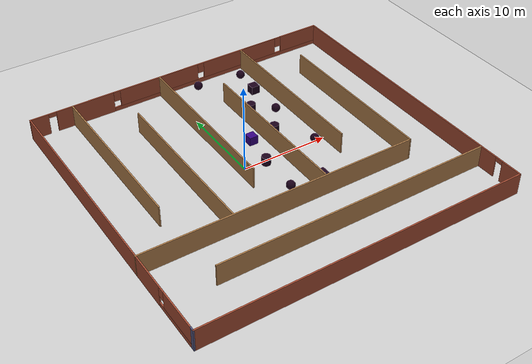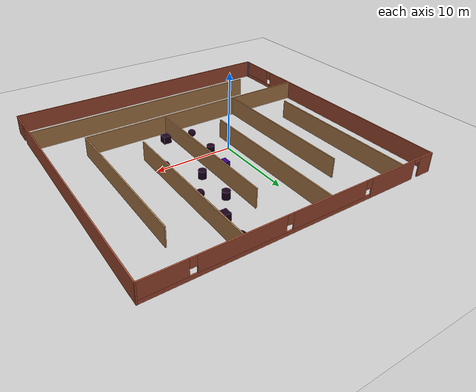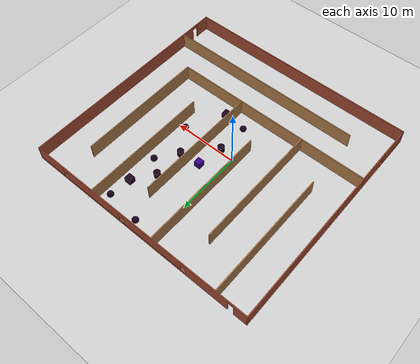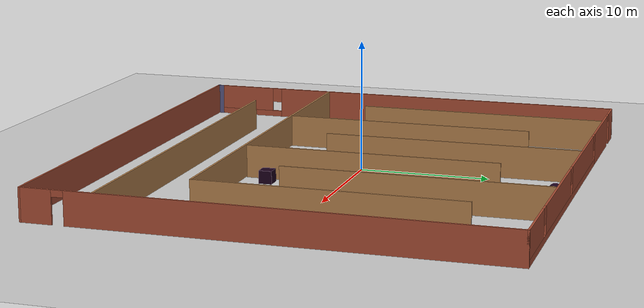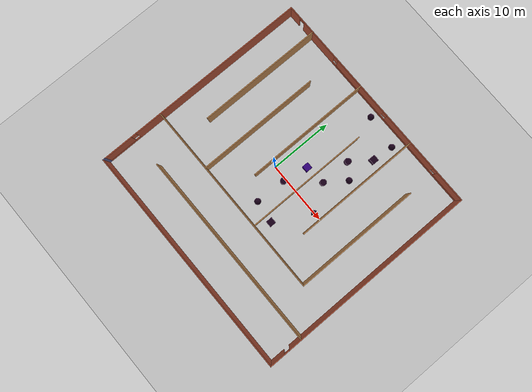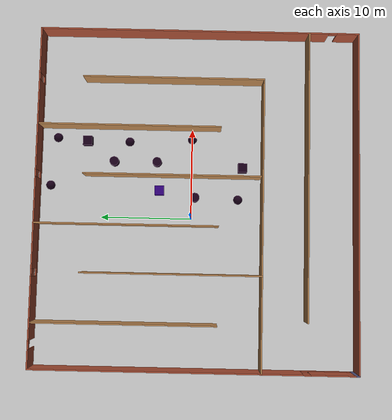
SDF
<sdf version="1.6">
 <world name="default">
  <model name="ground_plane">
   <static>1</static>
   <link name="link">
    <collision name="collision">
     <geometry><plane><normal>0 0 1</normal><size>100 100</size></plane></geometry>
     <surface><friction><ode><mu>100</mu><mu2>50</mu2></ode></friction></surface>
    </collision>
    <visual name="visual">
     <cast_shadows>0</cast_shadows>
     <geometry><plane><normal>0 0 1</normal><size>100 100</size></plane></geometry>
     <material>
      <script><uri>file://media/materials/scripts/gazebo.material</uri><name>Gazebo/Grey</name></script>
     </material>
    </visual>
   </link>
  </model>
  <model name="Building1">
   <pose>2.18279 -0.6308 0 0 -0 0</pose>
   <link name="Wall_135">
    <pose>0.005428 17.55 0 0 -0 0</pose>
    <visual name="Wall_135_Visual_0">
     <pose>-17.5623 0 1.25 0 -0 0</pose>
     <geometry><box><size>2.12549 0.15 2.5</size></box></geometry>
     <material>
      <script><uri>file://media/materials/scripts/gazebo.material</uri><name>Gazebo/Bricks</name></script>
      <ambient>0.333333 0.333333 0.498039 1</ambient>
     </material>
     <meta><layer>0</layer></meta>
    </visual>
    <collision name="Wall_135_Collision_0">
     <geometry><box><size>2.12549 0.15 2.5</size></box></geometry>
     <pose>-17.5623 0 1.25 0 -0 0</pose>
    </collision>
    <visual name="Wall_135_Visual_1">
     <pose>-12.2043 0 1.25 0 -0 0</pose>
     <geometry><box><size>6.79049 0.15 2.5</size></box></geometry>
     <material>
      <script><uri>file://media/materials/scripts/gazebo.material</uri><name>Gazebo/Bricks</name></script>
      <ambient>0.333333 0.333333 0.498039 1</ambient>
     </material>
     <meta><layer>0</layer></meta>
    </visual>
    <collision name="Wall_135_Collision_1">
     <geometry><box><size>6.79049 0.15 2.5</size></box></geometry>
     <pose>-12.2043 0 1.25 0 -0 0</pose>
    </collision>
    <visual name="Wall_135_Visual_2">
     <pose>4.90799 0 0.25 0 -0 0</pose>
     <geometry><box><size>27.434 0.15 0.5</size></box></geometry>
     <material>
      <script><uri>file://media/materials/scripts/gazebo.material</uri><name>Gazebo/Bricks</name></script>
      <ambient>0.333333 0.333333 0.498039 1</ambient>
     </material>
     <meta><layer>0</layer></meta>
    </visual>
    <collision name="Wall_135_Collision_2">
     <geometry><box><size>27.434 0.15 0.5</size></box></geometry>
     <pose>4.90799 0 0.25 0 -0 0</pose>
    </collision>
    <visual name="Wall_135_Visual_3">
     <pose>-3.02838 0 1.5 0 -0 0</pose>
     <geometry><box><size>9.96126 0.15 2</size></box></geometry>
     <material>
      <script><uri>file://media/materials/scripts/gazebo.material</uri><name>Gazebo/Bricks</name></script>
      <ambient>0.333333 0.333333 0.498039 1</ambient>
     </material>
     <meta><layer>0</layer></meta>
    </visual>
    <collision name="Wall_135_Collision_3">
     <geometry><box><size>9.96126 0.15 2</size></box></geometry>
     <pose>-3.02838 0 1.5 0 -0 0</pose>
    </collision>
    <visual name="Wall_135_Visual_4">
     <pose>7.73288 0 1.5 0 -0 0</pose>
     <geometry><box><size>9.96126 0.15 2</size></box></geometry>
     <material>
      <script><uri>file://media/materials/scripts/gazebo.material</uri><name>Gazebo/Bricks</name></script>
      <ambient>0.333333 0.333333 0.498039 1</ambient>
     </material>
     <meta><layer>0</layer></meta>
    </visual>
    <collision name="Wall_135_Collision_4">
     <geometry><box><size>9.96126 0.15 2</size></box></geometry>
     <pose>7.73288 0 1.5 0 -0 0</pose>
    </collision>
    <visual name="Wall_135_Visual_5">
     <pose>16.0693 0 1.5 0 -0 0</pose>
     <geometry><box><size>5.11148 0.15 2</size></box></geometry>
     <material>
      <script><uri>file://media/materials/scripts/gazebo.material</uri><name>Gazebo/Bricks</name></script>
      <ambient>0.333333 0.333333 0.498039 1</ambient>
     </material>
     <meta><layer>0</layer></meta>
    </visual>
    <collision name="Wall_135_Collision_5">
     <geometry><box><size>5.11148 0.15 2</size></box></geometry>
     <pose>16.0693 0 1.5 0 -0 0</pose>
    </collision>
    <visual name="Wall_135_Visual_6">
     <pose>-8.40901 0 1.9 0 -0 0</pose>
     <geometry><box><size>0.8 0.15 1.2</size></box></geometry>
     <material>
      <script><uri>file://media/materials/scripts/gazebo.material</uri><name>Gazebo/Bricks</name></script>
      <ambient>0.333333 0.333333 0.498039 1</ambient>
     </material>
     <meta><layer>0</layer></meta>
    </visual>
    <collision name="Wall_135_Collision_6">
     <geometry><box><size>0.8 0.15 1.2</size></box></geometry>
     <pose>-8.40901 0 1.9 0 -0 0</pose>
    </collision>
    <visual name="Wall_135_Visual_7">
     <pose>2.35225 0 1.9 0 -0 0</pose>
     <geometry><box><size>0.8 0.15 1.2</size></box></geometry>
     <material>
      <script><uri>file://media/materials/scripts/gazebo.material</uri><name>Gazebo/Bricks</name></script>
      <ambient>0.333333 0.333333 0.498039 1</ambient>
     </material>
     <meta><layer>0</layer></meta>
    </visual>
    <collision name="Wall_135_Collision_7">
     <geometry><box><size>0.8 0.15 1.2</size></box></geometry>
     <pose>2.35225 0 1.9 0 -0 0</pose>
    </collision>
    <visual name="Wall_135_Visual_8">
     <pose>13.1135 0 1.9 0 -0 0</pose>
     <geometry><box><size>0.8 0.15 1.2</size></box></geometry>
     <material>
      <script><uri>file://media/materials/scripts/gazebo.material</uri><name>Gazebo/Bricks</name></script>
      <ambient>0.333333 0.333333 0.498039 1</ambient>
     </material>
     <meta><layer>0</layer></meta>
    </visual>
    <collision name="Wall_135_Collision_8">
     <geometry><box><size>0.8 0.15 1.2</size></box></geometry>
     <pose>13.1135 0 1.9 0 -0 0</pose>
    </collision>
    <visual name="Wall_135_Visual_9">
     <pose>-16.0495 0 2.25 0 -0 0</pose>
     <geometry><box><size>0.9 0.15 0.5</size></box></geometry>
     <material>
      <script><uri>file://media/materials/scripts/gazebo.material</uri><name>Gazebo/Bricks</name></script>
      <ambient>0.333333 0.333333 0.498039 1</ambient>
     </material>
     <meta><layer>0</layer></meta>
    </visual>
    <collision name="Wall_135_Collision_9">
     <geometry><box><size>0.9 0.15 0.5</size></box></geometry>
     <pose>-16.0495 0 2.25 0 -0 0</pose>
    </collision>
   </link>
   <link name="Wall_138">
    <collision name="Wall_138_Collision">
     <geometry><box><size>20 0.15 2.5</size></box></geometry>
     <pose>0 0 1.25 0 -0 0</pose>
    </collision>
    <visual name="Wall_138_Visual">
     <pose>0 0 1.25 0 -0 0</pose>
     <geometry><box><size>20 0.15 2.5</size></box></geometry>
     <material>
      <script><uri>file://media/materials/scripts/gazebo.material</uri><name>Gazebo/Wood</name></script>
      <ambient>0.333333 0.333333 0.498039 1</ambient>
     </material>
     <meta><layer>0</layer></meta>
    </visual>
    <pose>-13.6766 7.55431 0 0 -0 -1.5708</pose>
   </link>
   <link name="Wall_140">
    <collision name="Wall_140_Collision">
     <geometry><box><size>19.75 0.15 2.5</size></box></geometry>
     <pose>0 0 1.25 0 -0 0</pose>
    </collision>
    <visual name="Wall_140_Visual">
     <pose>0 0 1.25 0 -0 0</pose>
     <geometry><box><size>19.75 0.15 2.5</size></box></geometry>
     <material>
      <script><uri>file://media/materials/scripts/gazebo.material</uri><name>Gazebo/Wood</name></script>
      <ambient>0.333333 0.333333 0.498039 1</ambient>
     </material>
     <meta><layer>0</layer></meta>
    </visual>
    <pose>-8.29597 2.63601 0 0 -0 1.5708</pose>
   </link>
   <link name="Wall_142">
    <collision name="Wall_142_Collision">
     <geometry><box><size>20 0.15 2.5</size></box></geometry>
     <pose>0 0 1.25 0 -0 0</pose>
    </collision>
    <visual name="Wall_142_Visual">
     <pose>0 0 1.25 0 -0 0</pose>
     <geometry><box><size>20 0.15 2.5</size></box></geometry>
     <material>
      <script><uri>file://media/materials/scripts/gazebo.material</uri><name>Gazebo/Wood</name></script>
      <ambient>0.333333 0.333333 0.498039 1</ambient>
     </material>
     <meta><layer>0</layer></meta>
    </visual>
    <pose>-3.02295 7.55431 0 0 -0 -1.5708</pose>
   </link>
   <link name="Wall_144">
    <collision name="Wall_144_Collision">
     <geometry><box><size>19.5 0.15 2.5</size></box></geometry>
     <pose>0 0 1.25 0 -0 0</pose>
    </collision>
    <visual name="Wall_144_Visual">
     <pose>0 0 1.25 0 -0 0</pose>
     <geometry><box><size>19.5 0.15 2.5</size></box></geometry>
     <material>
      <script><uri>file://media/materials/scripts/gazebo.material</uri><name>Gazebo/Wood</name></script>
      <ambient>0.333333 0.333333 0.498039 1</ambient>
     </material>
     <meta><layer>0</layer></meta>
    </visual>
    <pose>2.46529 2.72624 0 0 -0 1.5708</pose>
   </link>
   <link name="Wall_146">
    <collision name="Wall_146_Collision">
     <geometry><box><size>20 0.15 2.5</size></box></geometry>
     <pose>0 0 1.25 0 -0 0</pose>
    </collision>
    <visual name="Wall_146_Visual">
     <pose>0 0 1.25 0 -0 0</pose>
     <geometry><box><size>20 0.15 2.5</size></box></geometry>
     <material>
      <script><uri>file://media/materials/scripts/gazebo.material</uri><name>Gazebo/Wood</name></script>
      <ambient>0.333333 0.333333 0.498039 1</ambient>
     </material>
     <meta><layer>0</layer></meta>
    </visual>
    <pose>7.84593 7.44669 0 0 -0 -1.5708</pose>
   </link>
   <link name="Wall_149">
    <collision name="Wall_149_Collision">
     <geometry><box><size>20 0.15 2.5</size></box></geometry>
     <pose>0 0 1.25 0 -0 0</pose>
    </collision>
    <visual name="Wall_149_Visual">
     <pose>0 0 1.25 0 -0 0</pose>
     <geometry><box><size>20 0.15 2.5</size></box></geometry>
     <material>
      <script><uri>file://media/materials/scripts/gazebo.material</uri><name>Gazebo/Wood</name></script>
      <ambient>0.333333 0.333333 0.498039 1</ambient>
     </material>
     <meta><layer>0</layer></meta>
    </visual>
    <pose>13.2266 2.76101 0 0 -0 1.5708</pose>
   </link>
   <link name="Wall_152">
    <pose>18.5554 0 0 0 -0 -1.5708</pose>
    <visual name="Wall_152_Visual_0">
     <pose>-1.68906 0 1.25 0 -0 0</pose>
     <geometry><box><size>31.8719 0.15 2.5</size></box></geometry>
     <material>
      <script><uri>file://media/materials/scripts/gazebo.material</uri><name>Gazebo/Bricks</name></script>
      <ambient>0.333333 0.333333 0.498039 1</ambient>
     </material>
     <meta><layer>0</layer></meta>
    </visual>
    <collision name="Wall_152_Collision_0">
     <geometry><box><size>31.8719 0.15 2.5</size></box></geometry>
     <pose>-1.68906 0 1.25 0 -0 0</pose>
    </collision>
    <visual name="Wall_152_Visual_1">
     <pose>16.3859 0 1.25 0 -0 0</pose>
     <geometry><box><size>2.47813 0.15 2.5</size></box></geometry>
     <material>
      <script><uri>file://media/materials/scripts/gazebo.material</uri><name>Gazebo/Bricks</name></script>
      <ambient>0.333333 0.333333 0.498039 1</ambient>
     </material>
     <meta><layer>0</layer></meta>
    </visual>
    <collision name="Wall_152_Collision_1">
     <geometry><box><size>2.47813 0.15 2.5</size></box></geometry>
     <pose>16.3859 0 1.25 0 -0 0</pose>
    </collision>
    <visual name="Wall_152_Visual_2">
     <pose>14.6969 0 2.25 0 -0 0</pose>
     <geometry><box><size>0.9 0.15 0.5</size></box></geometry>
     <material>
      <script><uri>file://media/materials/scripts/gazebo.material</uri><name>Gazebo/Bricks</name></script>
      <ambient>0.333333 0.333333 0.498039 1</ambient>
     </material>
     <meta><layer>0</layer></meta>
    </visual>
    <collision name="Wall_152_Collision_2">
     <geometry><box><size>0.9 0.15 0.5</size></box></geometry>
     <pose>14.6969 0 2.25 0 -0 0</pose>
    </collision>
   </link>
   <link name="Wall_153">
    <collision name="Wall_153_Collision">
     <geometry><box><size>37.25 0.15 2.5</size></box></geometry>
     <pose>0 0 1.25 0 -0 0</pose>
    </collision>
    <visual name="Wall_153_Visual">
     <pose>0 0 1.25 0 -0 0</pose>
     <geometry><box><size>37.25 0.15 2.5</size></box></geometry>
     <material>
      <script><uri>file://media/materials/scripts/gazebo.material</uri><name>Gazebo/Bricks</name></script>
      <ambient>0.333333 0.333333 0.498039 1</ambient>
     </material>
     <meta><layer>0</layer></meta>
    </visual>
    <pose>0.005428 -17.55 0 0 -0 3.14159</pose>
   </link>
   <link name="Wall_154">
    <collision name="Wall_154_Collision">
     <geometry><box><size>0.55 0.15 2.5</size></box></geometry>
     <pose>0 0 1.25 0 -0 0</pose>
    </collision>
    <visual name="Wall_154_Visual">
     <pose>0 0 1.25 0 -0 0</pose>
     <geometry><box><size>0.55 0.15 2.5</size></box></geometry>
     <material>
      <script><uri>file://media/materials/scripts/gazebo.material</uri><name>Gazebo/Grey</name></script>
      <ambient>0.333333 0.333333 0.498039 1</ambient>
     </material>
     <meta><layer>0</layer></meta>
    </visual>
    <pose>-18.5446 -17.35 0 0 -0 1.5708</pose>
   </link>
   <link name="Wall_156">
    <collision name="Wall_156_Collision">
     <geometry><box><size>31.75 0.15 2.5</size></box></geometry>
     <pose>0 0 1.25 0 -0 0</pose>
    </collision>
    <visual name="Wall_156_Visual">
     <pose>0 0 1.25 0 -0 0</pose>
     <geometry><box><size>31.75 0.15 2.5</size></box></geometry>
     <material>
      <script><uri>file://media/materials/scripts/gazebo.material</uri><name>Gazebo/Wood</name></script>
      <ambient>0.333333 0.333333 0.498039 1</ambient>
     </material>
     <meta><layer>0</layer></meta>
    </visual>
    <pose>2.69958 -12.1142 0 0 -0 3.14159</pose>
   </link>
   <link name="Wall_47">
    <pose>-18.5446 0.2 0 0 -0 -1.5708</pose>
    <visual name="Wall_47_Visual_0">
     <pose>-2.80922 0 1.25 0 -0 0</pose>
     <geometry><box><size>29.2316 0.15 2.5</size></box></geometry>
     <material>
      <script><uri>file://media/materials/scripts/gazebo.material</uri><name>Gazebo/Bricks</name></script>
      <ambient>0.333333 0.333333 0.498039 1</ambient>
     </material>
     <meta><layer>0</layer></meta>
    </visual>
    <collision name="Wall_47_Collision_0">
     <geometry><box><size>29.2316 0.15 2.5</size></box></geometry>
     <pose>-2.80922 0 1.25 0 -0 0</pose>
    </collision>
    <visual name="Wall_47_Visual_1">
     <pose>14.6158 0 0.25 0 -0 0</pose>
     <geometry><box><size>5.61844 0.15 0.5</size></box></geometry>
     <material>
      <script><uri>file://media/materials/scripts/gazebo.material</uri><name>Gazebo/Bricks</name></script>
      <ambient>0.333333 0.333333 0.498039 1</ambient>
     </material>
     <meta><layer>0</layer></meta>
    </visual>
    <collision name="Wall_47_Collision_1">
     <geometry><box><size>5.61844 0.15 0.5</size></box></geometry>
     <pose>14.6158 0 0.25 0 -0 0</pose>
    </collision>
    <visual name="Wall_47_Visual_2">
     <pose>15.0158 0 1.5 0 -0 0</pose>
     <geometry><box><size>4.81844 0.15 2</size></box></geometry>
     <material>
      <script><uri>file://media/materials/scripts/gazebo.material</uri><name>Gazebo/Bricks</name></script>
      <ambient>0.333333 0.333333 0.498039 1</ambient>
     </material>
     <meta><layer>0</layer></meta>
    </visual>
    <collision name="Wall_47_Collision_2">
     <geometry><box><size>4.81844 0.15 2</size></box></geometry>
     <pose>15.0158 0 1.5 0 -0 0</pose>
    </collision>
    <visual name="Wall_47_Visual_3">
     <pose>12.2066 0 1.9 0 -0 0</pose>
     <geometry><box><size>0.8 0.15 1.2</size></box></geometry>
     <material>
      <script><uri>file://media/materials/scripts/gazebo.material</uri><name>Gazebo/Bricks</name></script>
      <ambient>0.333333 0.333333 0.498039 1</ambient>
     </material>
     <meta><layer>0</layer></meta>
    </visual>
    <collision name="Wall_47_Collision_3">
     <geometry><box><size>0.8 0.15 1.2</size></box></geometry>
     <pose>12.2066 0 1.9 0 -0 0</pose>
    </collision>
   </link>
   <link name="Wall_68">
    <collision name="Wall_68_Collision">
     <geometry><box><size>31.75 0.15 2.5</size></box></geometry>
     <pose>0 0 1.25 0 -0 0</pose>
    </collision>
    <visual name="Wall_68_Visual">
     <pose>0 0 1.25 0 -0 0</pose>
     <geometry><box><size>31.75 0.15 2.5</size></box></geometry>
     <material>
      <script><uri>file://media/materials/scripts/gazebo.material</uri><name>Gazebo/Wood</name></script>
      <ambient>0.333333 0.333333 0.498039 1</ambient>
     </material>
     <meta><layer>0</layer></meta>
    </visual>
    <pose>-2.75543 -7.17891 0 0 -0 3.14159</pose>
   </link>
   <static>1</static>
  </model>
  <model name="unit_box_5">
   <link name="link">
    <inertial>
     <mass>1</mass>
     <inertia>
      <ixx>0.166667</ixx>
      <ixy>0</ixy>
      <ixz>0</ixz>
      <iyy>0.166667</iyy>
      <iyz>0</iyz>
      <izz>0.166667</izz>
     </inertia>
    </inertial>
    <visual name="visual">
     <geometry><box><size>1 1 1</size></box></geometry>
     <material>
      <script><name>Gazebo/Grey</name><uri>file://media/materials/scripts/gazebo.material</uri></script>
      <shader type="pixel"><normal_map>__default__</normal_map></shader>
      <ambient>0.1 0 0.1 1</ambient>
      <diffuse>0.1 0 0.1 1</diffuse>
      <specular>0.1 0 0.1 1</specular>
      <emissive>0.1 0 0.1 1</emissive>
     </material>
    </visual>
    <collision name="collision">
     <geometry><box><size>1 1 1</size></box></geometry>
     <surface>
      <friction>
       <ode><mu>1</mu><mu2>1</mu2><fdir1>0 0 0</fdir1><slip1>0</slip1><slip2>0</slip2></ode>
       <torsional>
        <coefficient>1</coefficient>
        <patch_radius>0</patch_radius>
        <surface_radius>0</surface_radius>
        <use_patch_radius>1</use_patch_radius>
        <ode><slip>0</slip></ode>
       </torsional>
      </friction>
      <bounce><restitution_coefficient>0</restitution_coefficient><threshold>1e+06</threshold></bounce>
      <contact>
       <collide_without_contact>0</collide_without_contact>
       <collide_without_contact_bitmask>1</collide_without_contact_bitmask>
       <collide_bitmask>1</collide_bitmask>
       <ode>
        <soft_cfm>0</soft_cfm>
        <soft_erp>0.2</soft_erp>
        <kp>1e+13</kp>
        <kd>1</kd>
        <max_vel>0.01</max_vel>
        <min_depth>0</min_depth>
       </ode>
       <bullet>
        <split_impulse>1</split_impulse>
        <split_impulse_penetration_threshold>-0.01</split_impulse_penetration_threshold>
        <soft_cfm>0</soft_cfm>
        <soft_erp>0.2</soft_erp>
        <kp>1e+13</kp>
        <kd>1</kd>
       </bullet>
      </contact>
     </surface>
    </collision>
   </link>
   <static>0</static>
   <pose>8.5104 11.675 0.5 0 -0 0</pose>
  </model>
  <model name="unit_box_6">
   <link name="link">
    <inertial>
     <mass>1</mass>
     <inertia>
      <ixx>0.166667</ixx>
      <ixy>0</ixy>
      <ixz>0</ixz>
      <iyy>0.166667</iyy>
      <iyz>0</iyz>
      <izz>0.166667</izz>
     </inertia>
    </inertial>
    <visual name="visual">
     <geometry><box><size>1 1 1</size></box></geometry>
     <material>
      <script><name>Gazebo/Grey</name><uri>file://media/materials/scripts/gazebo.material</uri></script>
      <shader type="pixel"><normal_map>__default__</normal_map></shader>
      <ambient>0.1 0 0.1 1</ambient>
      <diffuse>0.1 0 0.1 1</diffuse>
      <specular>0.1 0 0.1 1</specular>
      <emissive>0.1 0 0.1 1</emissive>
     </material>
    </visual>
    <collision name="collision">
     <geometry><box><size>1 1 1</size></box></geometry>
     <surface>
      <friction>
       <ode><mu>1</mu><mu2>1</mu2><fdir1>0 0 0</fdir1><slip1>0</slip1><slip2>0</slip2></ode>
       <torsional>
        <coefficient>1</coefficient>
        <patch_radius>0</patch_radius>
        <surface_radius>0</surface_radius>
        <use_patch_radius>1</use_patch_radius>
        <ode><slip>0</slip></ode>
       </torsional>
      </friction>
      <bounce><restitution_coefficient>0</restitution_coefficient><threshold>1e+06</threshold></bounce>
      <contact>
       <collide_without_contact>0</collide_without_contact>
       <collide_without_contact_bitmask>1</collide_without_contact_bitmask>
       <collide_bitmask>1</collide_bitmask>
       <ode>
        <soft_cfm>0</soft_cfm>
        <soft_erp>0.2</soft_erp>
        <kp>1e+13</kp>
        <kd>1</kd>
        <max_vel>0.01</max_vel>
        <min_depth>0</min_depth>
       </ode>
       <bullet>
        <split_impulse>1</split_impulse>
        <split_impulse_penetration_threshold>-0.01</split_impulse_penetration_threshold>
        <soft_cfm>0</soft_cfm>
        <soft_erp>0.2</soft_erp>
        <kp>1e+13</kp>
        <kd>1</kd>
       </bullet>
      </contact>
     </surface>
    </collision>
   </link>
   <static>0</static>
   <pose>5.76483 -5.64419 0.5 0 -0 0</pose>
  </model>
  <model name="unit_sphere_1_4">
   <link name="link">
    <inertial>
     <mass>1</mass>
     <inertia><ixx>0.1</ixx><ixy>0</ixy><ixz>0</ixz><iyy>0.1</iyy><iyz>0</iyz><izz>0.1</izz></inertia>
    </inertial>
    <visual name="visual">
     <geometry><sphere><radius>0.5</radius></sphere></geometry>
     <material>
      <script><name>Gazebo/Grey</name><uri>file://media/materials/scripts/gazebo.material</uri></script>
      <shader type="pixel"><normal_map>__default__</normal_map></shader>
      <ambient>0.1 0 0.1 1</ambient>
      <diffuse>0.1 0 0.1 1</diffuse>
      <specular>0.1 0 0.1 1</specular>
      <emissive>0.1 0 0.1 1</emissive>
     </material>
    </visual>
    <collision name="collision">
     <geometry><sphere><radius>0.5</radius></sphere></geometry>
     <surface>
      <friction>
       <ode><mu>1</mu><mu2>1</mu2><fdir1>0 0 0</fdir1><slip1>0</slip1><slip2>0</slip2></ode>
       <torsional>
        <coefficient>1</coefficient>
        <patch_radius>0</patch_radius>
        <surface_radius>0</surface_radius>
        <use_patch_radius>1</use_patch_radius>
        <ode><slip>0</slip></ode>
       </torsional>
      </friction>
      <bounce><restitution_coefficient>0</restitution_coefficient><threshold>1e+06</threshold></bounce>
      <contact>
       <collide_without_contact>0</collide_without_contact>
       <collide_without_contact_bitmask>1</collide_without_contact_bitmask>
       <collide_bitmask>1</collide_bitmask>
       <ode>
        <soft_cfm>0</soft_cfm>
        <soft_erp>0.2</soft_erp>
        <kp>1e+13</kp>
        <kd>1</kd>
        <max_vel>0.01</max_vel>
        <min_depth>0</min_depth>
       </ode>
       <bullet>
        <split_impulse>1</split_impulse>
        <split_impulse_penetration_threshold>-0.01</split_impulse_penetration_threshold>
        <soft_cfm>0</soft_cfm>
        <soft_erp>0.2</soft_erp>
        <kp>1e+13</kp>
        <kd>1</kd>
       </bullet>
      </contact>
     </surface>
    </collision>
   </link>
   <static>0</static>
   <pose>2.20848 -5.18813 0.5 0 -0 0</pose>
  </model>
  <model name="unit_sphere_1_5">
   <link name="link">
    <inertial>
     <mass>1</mass>
     <inertia><ixx>0.1</ixx><ixy>0</ixy><ixz>0</ixz><iyy>0.1</iyy><iyz>0</iyz><izz>0.1</izz></inertia>
    </inertial>
    <visual name="visual">
     <geometry><sphere><radius>0.5</radius></sphere></geometry>
     <material>
      <script><name>Gazebo/Grey</name><uri>file://media/materials/scripts/gazebo.material</uri></script>
      <shader type="pixel"><normal_map>__default__</normal_map></shader>
      <ambient>0.1 0 0.1 1</ambient>
      <diffuse>0.1 0 0.1 1</diffuse>
      <specular>0.1 0 0.1 1</specular>
      <emissive>0.1 0 0.1 1</emissive>
     </material>
    </visual>
    <collision name="collision">
     <geometry><sphere><radius>0.5</radius></sphere></geometry>
     <surface>
      <friction>
       <ode><mu>1</mu><mu2>1</mu2><fdir1>0 0 0</fdir1><slip1>0</slip1><slip2>0</slip2></ode>
       <torsional>
        <coefficient>1</coefficient>
        <patch_radius>0</patch_radius>
        <surface_radius>0</surface_radius>
        <use_patch_radius>1</use_patch_radius>
        <ode><slip>0</slip></ode>
       </torsional>
      </friction>
      <bounce><restitution_coefficient>0</restitution_coefficient><threshold>1e+06</threshold></bounce>
      <contact>
       <collide_without_contact>0</collide_without_contact>
       <collide_without_contact_bitmask>1</collide_without_contact_bitmask>
       <collide_bitmask>1</collide_bitmask>
       <ode>
        <soft_cfm>0</soft_cfm>
        <soft_erp>0.2</soft_erp>
        <kp>1e+13</kp>
        <kd>1</kd>
        <max_vel>0.01</max_vel>
        <min_depth>0</min_depth>
       </ode>
       <bullet>
        <split_impulse>1</split_impulse>
        <split_impulse_penetration_threshold>-0.01</split_impulse_penetration_threshold>
        <soft_cfm>0</soft_cfm>
        <soft_erp>0.2</soft_erp>
        <kp>1e+13</kp>
        <kd>1</kd>
       </bullet>
      </contact>
     </surface>
    </collision>
   </link>
   <static>0</static>
   <pose>3.43929 15.6547 0.5 0 -0 0</pose>
  </model>
  <model name="unit_sphere_1_6">
   <link name="link">
    <inertial>
     <mass>1</mass>
     <inertia><ixx>0.1</ixx><ixy>0</ixy><ixz>0</ixz><iyy>0.1</iyy><iyz>0</iyz><izz>0.1</izz></inertia>
    </inertial>
    <visual name="visual">
     <geometry><sphere><radius>0.5</radius></sphere></geometry>
     <material>
      <script><name>Gazebo/Grey</name><uri>file://media/materials/scripts/gazebo.material</uri></script>
      <shader type="pixel"><normal_map>__default__</normal_map></shader>
      <ambient>0.1 0 0.1 1</ambient>
      <diffuse>0.1 0 0.1 1</diffuse>
      <specular>0.1 0 0.1 1</specular>
      <emissive>0.1 0 0.1 1</emissive>
     </material>
    </visual>
    <collision name="collision">
     <geometry><sphere><radius>0.5</radius></sphere></geometry>
     <surface>
      <friction>
       <ode><mu>1</mu><mu2>1</mu2><fdir1>0 0 0</fdir1><slip1>0</slip1><slip2>0</slip2></ode>
       <torsional>
        <coefficient>1</coefficient>
        <patch_radius>0</patch_radius>
        <surface_radius>0</surface_radius>
        <use_patch_radius>1</use_patch_radius>
        <ode><slip>0</slip></ode>
       </torsional>
      </friction>
      <bounce><restitution_coefficient>0</restitution_coefficient><threshold>1e+06</threshold></bounce>
      <contact>
       <collide_without_contact>0</collide_without_contact>
       <collide_without_contact_bitmask>1</collide_without_contact_bitmask>
       <collide_bitmask>1</collide_bitmask>
       <ode>
        <soft_cfm>0</soft_cfm>
        <soft_erp>0.2</soft_erp>
        <kp>1e+13</kp>
        <kd>1</kd>
        <max_vel>0.01</max_vel>
        <min_depth>0</min_depth>
       </ode>
       <bullet>
        <split_impulse>1</split_impulse>
        <split_impulse_penetration_threshold>-0.01</split_impulse_penetration_threshold>
        <soft_cfm>0</soft_cfm>
        <soft_erp>0.2</soft_erp>
        <kp>1e+13</kp>
        <kd>1</kd>
       </bullet>
      </contact>
     </surface>
    </collision>
   </link>
   <static>0</static>
   <pose>8.81686 15.0222 0.5 0 -0 0</pose>
  </model>
  <model name="unit_sphere_1_7">
   <link name="link">
    <inertial>
     <mass>1</mass>
     <inertia><ixx>0.1</ixx><ixy>0</ixy><ixz>0</ixz><iyy>0.1</iyy><iyz>0</iyz><izz>0.1</izz></inertia>
    </inertial>
    <visual name="visual">
     <geometry><sphere><radius>0.5</radius></sphere></geometry>
     <material>
      <script><name>Gazebo/Grey</name><uri>file://media/materials/scripts/gazebo.material</uri></script>
      <shader type="pixel"><normal_map>__default__</normal_map></shader>
      <ambient>0.1 0 0.1 1</ambient>
      <diffuse>0.1 0 0.1 1</diffuse>
      <specular>0.1 0 0.1 1</specular>
      <emissive>0.1 0 0.1 1</emissive>
     </material>
    </visual>
    <collision name="collision">
     <geometry><sphere><radius>0.5</radius></sphere></geometry>
     <surface>
      <friction>
       <ode><mu>1</mu><mu2>1</mu2><fdir1>0 0 0</fdir1><slip1>0</slip1><slip2>0</slip2></ode>
       <torsional>
        <coefficient>1</coefficient>
        <patch_radius>0</patch_radius>
        <surface_radius>0</surface_radius>
        <use_patch_radius>1</use_patch_radius>
        <ode><slip>0</slip></ode>
       </torsional>
      </friction>
      <bounce><restitution_coefficient>0</restitution_coefficient><threshold>1e+06</threshold></bounce>
      <contact>
       <collide_without_contact>0</collide_without_contact>
       <collide_without_contact_bitmask>1</collide_without_contact_bitmask>
       <collide_bitmask>1</collide_bitmask>
       <ode>
        <soft_cfm>0</soft_cfm>
        <soft_erp>0.2</soft_erp>
        <kp>1e+13</kp>
        <kd>1</kd>
        <max_vel>0.01</max_vel>
        <min_depth>0</min_depth>
       </ode>
       <bullet>
        <split_impulse>1</split_impulse>
        <split_impulse_penetration_threshold>-0.01</split_impulse_penetration_threshold>
        <soft_cfm>0</soft_cfm>
        <soft_erp>0.2</soft_erp>
        <kp>1e+13</kp>
        <kd>1</kd>
       </bullet>
      </contact>
     </surface>
    </collision>
   </link>
   <static>0</static>
   <pose>8.49477 6.98765 0.5 0 -0 0</pose>
  </model>
  <model name="unit_sphere_1_8">
   <link name="link">
    <inertial>
     <mass>1</mass>
     <inertia><ixx>0.1</ixx><ixy>0</ixy><ixz>0</ixz><iyy>0.1</iyy><iyz>0</iyz><izz>0.1</izz></inertia>
    </inertial>
    <visual name="visual">
     <geometry><sphere><radius>0.5</radius></sphere></geometry>
     <material>
      <script><name>Gazebo/Grey</name><uri>file://media/materials/scripts/gazebo.material</uri></script>
      <shader type="pixel"><normal_map>__default__</normal_map></shader>
      <ambient>0.1 0 0.1 1</ambient>
      <diffuse>0.1 0 0.1 1</diffuse>
      <specular>0.1 0 0.1 1</specular>
      <emissive>0.1 0 0.1 1</emissive>
     </material>
    </visual>
    <collision name="collision">
     <geometry><sphere><radius>0.5</radius></sphere></geometry>
     <surface>
      <friction>
       <ode><mu>1</mu><mu2>1</mu2><fdir1>0 0 0</fdir1><slip1>0</slip1><slip2>0</slip2></ode>
       <torsional>
        <coefficient>1</coefficient>
        <patch_radius>0</patch_radius>
        <surface_radius>0</surface_radius>
        <use_patch_radius>1</use_patch_radius>
        <ode><slip>0</slip></ode>
       </torsional>
      </friction>
      <bounce><restitution_coefficient>0</restitution_coefficient><threshold>1e+06</threshold></bounce>
      <contact>
       <collide_without_contact>0</collide_without_contact>
       <collide_without_contact_bitmask>1</collide_without_contact_bitmask>
       <collide_bitmask>1</collide_bitmask>
       <ode>
        <soft_cfm>0</soft_cfm>
        <soft_erp>0.2</soft_erp>
        <kp>1e+13</kp>
        <kd>1</kd>
        <max_vel>0.01</max_vel>
        <min_depth>0</min_depth>
       </ode>
       <bullet>
        <split_impulse>1</split_impulse>
        <split_impulse_penetration_threshold>-0.01</split_impulse_penetration_threshold>
        <soft_cfm>0</soft_cfm>
        <soft_erp>0.2</soft_erp>
        <kp>1e+13</kp>
        <kd>1</kd>
       </bullet>
      </contact>
     </surface>
    </collision>
   </link>
   <static>0</static>
   <pose>8.86514 -0.012718 0.5 0 -0 0</pose>
  </model>
  <model name="unit_cylinder_0_0">
   <link name="link">
    <inertial>
     <mass>1</mass>
     <inertia><ixx>0.145833</ixx><ixy>0</ixy><ixz>0</ixz><iyy>0.145833</iyy><iyz>0</iyz><izz>0.125</izz></inertia>
    </inertial>
    <visual name="visual">
     <geometry><cylinder><radius>0.5</radius><length>1</length></cylinder></geometry>
     <material>
      <script><name>Gazebo/Grey</name><uri>file://media/materials/scripts/gazebo.material</uri></script>
      <shader type="pixel"><normal_map>__default__</normal_map></shader>
      <ambient>0.1 0 0.1 1</ambient>
      <diffuse>0.1 0 0.1 1</diffuse>
      <specular>0.1 0 0.1 1</specular>
      <emissive>0 0 0 1</emissive>
     </material>
    </visual>
    <collision name="collision">
     <geometry><cylinder><radius>0.5</radius><length>1</length></cylinder></geometry>
     <surface>
      <friction>
       <ode><mu>1</mu><mu2>1</mu2><fdir1>0 0 0</fdir1><slip1>0</slip1><slip2>0</slip2></ode>
       <torsional>
        <coefficient>1</coefficient>
        <patch_radius>0</patch_radius>
        <surface_radius>0</surface_radius>
        <use_patch_radius>1</use_patch_radius>
        <ode><slip>0</slip></ode>
       </torsional>
      </friction>
      <bounce><restitution_coefficient>0</restitution_coefficient><threshold>1e+06</threshold></bounce>
      <contact>
       <collide_without_contact>0</collide_without_contact>
       <collide_without_contact_bitmask>1</collide_without_contact_bitmask>
       <collide_bitmask>1</collide_bitmask>
       <ode>
        <soft_cfm>0</soft_cfm>
        <soft_erp>0.2</soft_erp>
        <kp>1e+13</kp>
        <kd>1</kd>
        <max_vel>0.01</max_vel>
        <min_depth>0</min_depth>
       </ode>
       <bullet>
        <split_impulse>1</split_impulse>
        <split_impulse_penetration_threshold>-0.01</split_impulse_penetration_threshold>
        <soft_cfm>0</soft_cfm>
        <soft_erp>0.2</soft_erp>
        <kp>1e+13</kp>
        <kd>1</kd>
       </bullet>
      </contact>
     </surface>
    </collision>
   </link>
   <static>0</static>
   <pose>2.36542 -0.407302 0.499991 0 -0 0</pose>
  </model>
  <model name="unit_cylinder_0_2">
   <link name="link">
    <inertial>
     <mass>1</mass>
     <inertia><ixx>0.145833</ixx><ixy>0</ixy><ixz>0</ixz><iyy>0.145833</iyy><iyz>0</iyz><izz>0.125</izz></inertia>
    </inertial>
    <visual name="visual">
     <geometry><cylinder><radius>0.5</radius><length>1</length></cylinder></geometry>
     <material>
      <script><name>Gazebo/Grey</name><uri>file://media/materials/scripts/gazebo.material</uri></script>
      <shader type="pixel"><normal_map>__default__</normal_map></shader>
      <ambient>0.1 0 0.1 1</ambient>
      <diffuse>0.1 0 0.1 1</diffuse>
      <specular>0.1 0 0.1 1</specular>
      <emissive>0 0 0 1</emissive>
     </material>
    </visual>
    <collision name="collision">
     <geometry><cylinder><radius>0.5</radius><length>1</length></cylinder></geometry>
     <surface>
      <friction>
       <ode><mu>1</mu><mu2>1</mu2><fdir1>0 0 0</fdir1><slip1>0</slip1><slip2>0</slip2></ode>
       <torsional>
        <coefficient>1</coefficient>
        <patch_radius>0</patch_radius>
        <surface_radius>0</surface_radius>
        <use_patch_radius>1</use_patch_radius>
        <ode><slip>0</slip></ode>
       </torsional>
      </friction>
      <bounce><restitution_coefficient>0</restitution_coefficient><threshold>1e+06</threshold></bounce>
      <contact>
       <collide_without_contact>0</collide_without_contact>
       <collide_without_contact_bitmask>1</collide_without_contact_bitmask>
       <collide_bitmask>1</collide_bitmask>
       <ode>
        <soft_cfm>0</soft_cfm>
        <soft_erp>0.2</soft_erp>
        <kp>1e+13</kp>
        <kd>1</kd>
        <max_vel>0.01</max_vel>
        <min_depth>0</min_depth>
       </ode>
       <bullet>
        <split_impulse>1</split_impulse>
        <split_impulse_penetration_threshold>-0.01</split_impulse_penetration_threshold>
        <soft_cfm>0</soft_cfm>
        <soft_erp>0.2</soft_erp>
        <kp>1e+13</kp>
        <kd>1</kd>
       </bullet>
      </contact>
     </surface>
    </collision>
   </link>
   <static>0</static>
   <pose>6.24978 8.63819 0.499998 3e-06 2e-06 0</pose>
  </model>
  <model name="unit_cylinder_0_3">
   <link name="link">
    <inertial>
     <mass>1</mass>
     <inertia><ixx>0.145833</ixx><ixy>0</ixy><ixz>0</ixz><iyy>0.145833</iyy><iyz>0</iyz><izz>0.125</izz></inertia>
    </inertial>
    <visual name="visual">
     <geometry><cylinder><radius>0.5</radius><length>1</length></cylinder></geometry>
     <material>
      <script><name>Gazebo/Grey</name><uri>file://media/materials/scripts/gazebo.material</uri></script>
      <shader type="pixel"><normal_map>__default__</normal_map></shader>
      <ambient>0.1 0 0.1 1</ambient>
      <diffuse>0.1 0 0.1 1</diffuse>
      <specular>0.1 0 0.1 1</specular>
      <emissive>0 0 0 1</emissive>
     </material>
    </visual>
    <collision name="collision">
     <geometry><cylinder><radius>0.5</radius><length>1</length></cylinder></geometry>
     <surface>
      <friction>
       <ode><mu>1</mu><mu2>1</mu2><fdir1>0 0 0</fdir1><slip1>0</slip1><slip2>0</slip2></ode>
       <torsional>
        <coefficient>1</coefficient>
        <patch_radius>0</patch_radius>
        <surface_radius>0</surface_radius>
        <use_patch_radius>1</use_patch_radius>
        <ode><slip>0</slip></ode>
       </torsional>
      </friction>
      <bounce><restitution_coefficient>0</restitution_coefficient><threshold>1e+06</threshold></bounce>
      <contact>
       <collide_without_contact>0</collide_without_contact>
       <collide_without_contact_bitmask>1</collide_without_contact_bitmask>
       <collide_bitmask>1</collide_bitmask>
       <ode>
        <soft_cfm>0</soft_cfm>
        <soft_erp>0.2</soft_erp>
        <kp>1e+13</kp>
        <kd>1</kd>
        <max_vel>0.01</max_vel>
        <min_depth>0</min_depth>
       </ode>
       <bullet>
        <split_impulse>1</split_impulse>
        <split_impulse_penetration_threshold>-0.01</split_impulse_penetration_threshold>
        <soft_cfm>0</soft_cfm>
        <soft_erp>0.2</soft_erp>
        <kp>1e+13</kp>
        <kd>1</kd>
       </bullet>
      </contact>
     </surface>
    </collision>
   </link>
   <static>0</static>
   <pose>6.25219 3.87062 0.499991 0 -0 0</pose>
  </model>
  <model name="unit_box_4">
   <link name="link">
    <inertial>
     <mass>1</mass>
     <inertia>
      <ixx>0.166667</ixx>
      <ixy>0</ixy>
      <ixz>0</ixz>
      <iyy>0.166667</iyy>
      <iyz>0</iyz>
      <izz>0.166667</izz>
     </inertia>
    </inertial>
    <visual name="visual">
     <geometry><box><size>1 1 1</size></box></geometry>
     <material>
      <script><name>Gazebo/Grey</name><uri>file://media/materials/scripts/gazebo.material</uri></script>
      <shader type="pixel"><normal_map>__default__</normal_map></shader>
      <ambient>0.2 0.1 0.4 1</ambient>
      <diffuse>0.2 0 0.5 1</diffuse>
      <specular>0.2 0.1 0.5 1</specular>
      <emissive>0.1 0 0.5 1</emissive>
     </material>
    </visual>
    <collision name="collision">
     <geometry><box><size>1 1 1</size></box></geometry>
     <surface>
      <friction>
       <ode><mu>1</mu><mu2>1</mu2><fdir1>0 0 0</fdir1><slip1>0</slip1><slip2>0</slip2></ode>
       <torsional>
        <coefficient>1</coefficient>
        <patch_radius>0</patch_radius>
        <surface_radius>0</surface_radius>
        <use_patch_radius>1</use_patch_radius>
        <ode><slip>0</slip></ode>
       </torsional>
      </friction>
      <bounce><restitution_coefficient>0</restitution_coefficient><threshold>1e+06</threshold></bounce>
      <contact>
       <collide_without_contact>0</collide_without_contact>
       <collide_without_contact_bitmask>1</collide_without_contact_bitmask>
       <collide_bitmask>1</collide_bitmask>
       <ode>
        <soft_cfm>0</soft_cfm>
        <soft_erp>0.2</soft_erp>
        <kp>1e+13</kp>
        <kd>1</kd>
        <max_vel>0.01</max_vel>
        <min_depth>0</min_depth>
       </ode>
       <bullet>
        <split_impulse>1</split_impulse>
        <split_impulse_penetration_threshold>-0.01</split_impulse_penetration_threshold>
        <soft_cfm>0</soft_cfm>
        <soft_erp>0.2</soft_erp>
        <kp>1e+13</kp>
        <kd>1</kd>
       </bullet>
      </contact>
     </surface>
    </collision>
   </link>
   <static>0</static>
   <pose>3.06265 3.53483 0.5 0 -0 0</pose>
  </model>
 </world>
</sdf>
